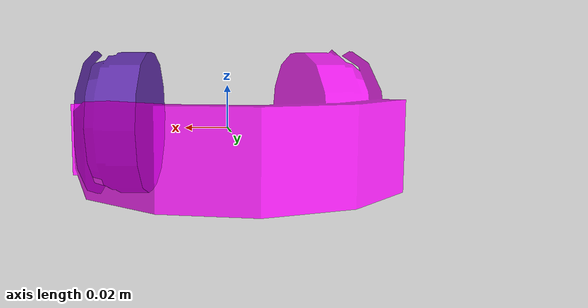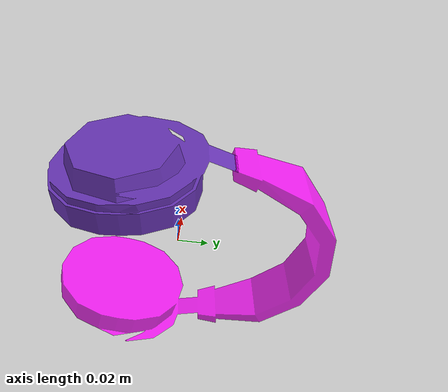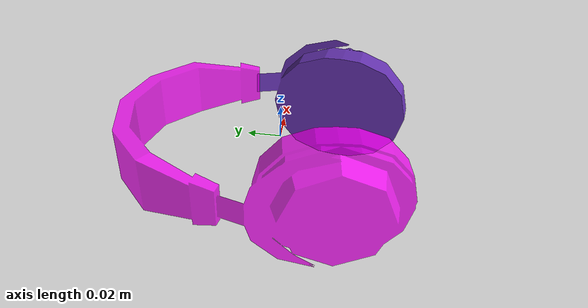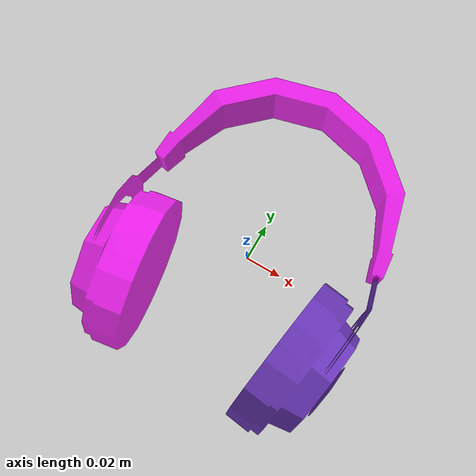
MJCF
<?xml version="1.0" encoding="utf-8"?>
<mujoco model="top_watertight_tiny">

  <asset>

    <mesh file="top_watertight_tiny.obj"/>

    <mesh file="top_watertight_tiny_collision_0.obj"/>

    <mesh file="top_watertight_tiny_collision_1.obj"/>

    <mesh file="top_watertight_tiny_collision_2.obj"/>

    <mesh file="top_watertight_tiny_collision_3.obj"/>

    <mesh file="top_watertight_tiny_collision_4.obj"/>

    <mesh file="top_watertight_tiny_collision_5.obj"/>

    <mesh file="top_watertight_tiny_collision_6.obj"/>

    <mesh file="top_watertight_tiny_collision_7.obj"/>

    <mesh file="top_watertight_tiny_collision_8.obj"/>

    <mesh file="top_watertight_tiny_collision_9.obj"/>

    <mesh file="top_watertight_tiny_collision_10.obj"/>

    <mesh file="top_watertight_tiny_collision_11.obj"/>

    <mesh file="top_watertight_tiny_collision_12.obj"/>

    <mesh file="top_watertight_tiny_collision_13.obj"/>

    <mesh file="top_watertight_tiny_collision_14.obj"/>

    <mesh file="top_watertight_tiny_collision_15.obj"/>

    <mesh file="top_watertight_tiny_collision_16.obj"/>

    <mesh file="top_watertight_tiny_collision_17.obj"/>

    <mesh file="top_watertight_tiny_collision_18.obj"/>

    <mesh file="top_watertight_tiny_collision_19.obj"/>

    <mesh file="top_watertight_tiny_collision_20.obj"/>

    <mesh file="top_watertight_tiny_collision_21.obj"/>

    <mesh file="top_watertight_tiny_collision_22.obj"/>

    <mesh file="bottom_watertight_tiny.obj"/>

    <mesh file="bottom_watertight_tiny_collision_0.obj"/>

    <mesh file="bottom_watertight_tiny_collision_1.obj"/>

    <mesh file="bottom_watertight_tiny_collision_2.obj"/>

    <mesh file="bottom_watertight_tiny_collision_3.obj"/>

    <mesh file="bottom_watertight_tiny_collision_4.obj"/>

    <mesh file="bottom_watertight_tiny_collision_5.obj"/>

    <mesh file="bottom_watertight_tiny_collision_6.obj"/>

    <mesh file="bottom_watertight_tiny_collision_7.obj"/>

    <mesh file="bottom_watertight_tiny_collision_8.obj"/>

    <mesh file="bottom_watertight_tiny_collision_9.obj"/>

    <mesh file="bottom_watertight_tiny_collision_10.obj"/>

  </asset>

  <worldbody>

    <body name="top_watertight_tiny">

      <freejoint/>

      <geom mesh="top_watertight_tiny" group="2" type="mesh" rgba="0.4 0.2 0.7 1" contype="0" conaffinity="0" solimp="0.90 0.95 0.001" solref="0.02 1.0" density="100" friction="0.95 0.4 0.3"/>

      <geom mesh="top_watertight_tiny_collision_0" rgba="0.972191975508718 0.7063325295295756 0.017618356531841628 1" group="3" type="mesh" solimp="0.90 0.95 0.001" solref="0.02 1.0" density="100" friction="0.95 0.4 0.3"/>

      <geom mesh="top_watertight_tiny_collision_1" rgba="0.9105662967236675 0.23072450923037469 0.8241091775482193 1" group="3" type="mesh" solimp="0.90 0.95 0.001" solref="0.02 1.0" density="100" friction="0.95 0.4 0.3"/>

      <geom mesh="top_watertight_tiny_collision_2" rgba="0.06595602035843995 0.9905594900314446 0.052005618223440186 1" group="3" type="mesh" solimp="0.90 0.95 0.001" solref="0.02 1.0" density="100" friction="0.95 0.4 0.3"/>

      <geom mesh="top_watertight_tiny_collision_3" rgba="0.5875122225837994 0.38600920195669075 0.2567319312206978 1" group="3" type="mesh" solimp="0.90 0.95 0.001" solref="0.02 1.0" density="100" friction="0.95 0.4 0.3"/>

      <geom mesh="top_watertight_tiny_collision_4" rgba="0.8843967061785761 0.7651621590146752 0.4973384128017905 1" group="3" type="mesh" solimp="0.90 0.95 0.001" solref="0.02 1.0" density="100" friction="0.95 0.4 0.3"/>

      <geom mesh="top_watertight_tiny_collision_5" rgba="0.13868441616667926 0.6188789882046587 0.5358339721038192 1" group="3" type="mesh" solimp="0.90 0.95 0.001" solref="0.02 1.0" density="100" friction="0.95 0.4 0.3"/>

      <geom mesh="top_watertight_tiny_collision_6" rgba="0.9644292455005546 0.7867783163744734 0.5996516275383842 1" group="3" type="mesh" solimp="0.90 0.95 0.001" solref="0.02 1.0" density="100" friction="0.95 0.4 0.3"/>

      <geom mesh="top_watertight_tiny_collision_7" rgba="0.8955300513164135 0.6349430476894633 0.3906576238347147 1" group="3" type="mesh" solimp="0.90 0.95 0.001" solref="0.02 1.0" density="100" friction="0.95 0.4 0.3"/>

      <geom mesh="top_watertight_tiny_collision_8" rgba="0.00807233998893453 0.3689432071129899 0.026293767860044226 1" group="3" type="mesh" solimp="0.90 0.95 0.001" solref="0.02 1.0" density="100" friction="0.95 0.4 0.3"/>

      <geom mesh="top_watertight_tiny_collision_9" rgba="0.6533259123739588 0.01856904010015037 0.20779111779516024 1" group="3" type="mesh" solimp="0.90 0.95 0.001" solref="0.02 1.0" density="100" friction="0.95 0.4 0.3"/>

      <geom mesh="top_watertight_tiny_collision_10" rgba="0.5732629979582301 0.4990040027001653 0.910729971205775 1" group="3" type="mesh" solimp="0.90 0.95 0.001" solref="0.02 1.0" density="100" friction="0.95 0.4 0.3"/>

      <geom mesh="top_watertight_tiny_collision_11" rgba="0.25565611417188217 0.4974727984916151 0.033170826806754095 1" group="3" type="mesh" solimp="0.90 0.95 0.001" solref="0.02 1.0" density="100" friction="0.95 0.4 0.3"/>

      <geom mesh="top_watertight_tiny_collision_12" rgba="0.46114622165367924 0.3640672620533516 0.4337314557063341 1" group="3" type="mesh" solimp="0.90 0.95 0.001" solref="0.02 1.0" density="100" friction="0.95 0.4 0.3"/>

      <geom mesh="top_watertight_tiny_collision_13" rgba="0.5819924166070434 0.5929551825824984 0.7419561750883131 1" group="3" type="mesh" solimp="0.90 0.95 0.001" solref="0.02 1.0" density="100" friction="0.95 0.4 0.3"/>

      <geom mesh="top_watertight_tiny_collision_14" rgba="0.20069115523895797 0.7913871705082057 0.14132332947278659 1" group="3" type="mesh" solimp="0.90 0.95 0.001" solref="0.02 1.0" density="100" friction="0.95 0.4 0.3"/>

      <geom mesh="top_watertight_tiny_collision_15" rgba="0.544302303260373 0.1154283687669484 0.5645763346266488 1" group="3" type="mesh" solimp="0.90 0.95 0.001" solref="0.02 1.0" density="100" friction="0.95 0.4 0.3"/>

      <geom mesh="top_watertight_tiny_collision_16" rgba="0.5676102929579001 0.05288669129875101 0.8422864857368847 1" group="3" type="mesh" solimp="0.90 0.95 0.001" solref="0.02 1.0" density="100" friction="0.95 0.4 0.3"/>

      <geom mesh="top_watertight_tiny_collision_17" rgba="0.43154742718216477 0.17179999184107164 0.9593480597990771 1" group="3" type="mesh" solimp="0.90 0.95 0.001" solref="0.02 1.0" density="100" friction="0.95 0.4 0.3"/>

      <geom mesh="top_watertight_tiny_collision_18" rgba="0.04364970963152792 0.5433476429261603 0.951805943184898 1" group="3" type="mesh" solimp="0.90 0.95 0.001" solref="0.02 1.0" density="100" friction="0.95 0.4 0.3"/>

      <geom mesh="top_watertight_tiny_collision_19" rgba="0.16311107996771068 0.041671159854726136 0.8791564929876972 1" group="3" type="mesh" solimp="0.90 0.95 0.001" solref="0.02 1.0" density="100" friction="0.95 0.4 0.3"/>

      <geom mesh="top_watertight_tiny_collision_20" rgba="0.43526710194318563 0.01480659437398757 0.21180047687145376 1" group="3" type="mesh" solimp="0.90 0.95 0.001" solref="0.02 1.0" density="100" friction="0.95 0.4 0.3"/>

      <geom mesh="top_watertight_tiny_collision_21" rgba="0.7173398690918577 0.5931217638811728 0.20469906262751436 1" group="3" type="mesh" solimp="0.90 0.95 0.001" solref="0.02 1.0" density="100" friction="0.95 0.4 0.3"/>

      <geom mesh="top_watertight_tiny_collision_22" rgba="0.9932939068341023 0.778651105566973 0.3959232583777482 1" group="3" type="mesh" solimp="0.90 0.95 0.001" solref="0.02 1.0" density="100" friction="0.95 0.4 0.3"/>

      <body name="bottom_watertight_tiny">

        <geom mesh="bottom_watertight_tiny" group="2" type="mesh" rgba="1 0 1 0.8" contype="0" conaffinity="0" solimp="0.90 0.95 0.001" solref="0.02 1.0" density="100" friction="0.95 0.4 0.3"/>

        <geom mesh="bottom_watertight_tiny_collision_0" rgba="0.7702886763543769 0.17026460255572395 0.5967077943512583 1" group="3" type="mesh" solimp="0.90 0.95 0.001" solref="0.02 1.0" density="100" friction="0.95 0.4 0.3"/>

        <geom mesh="bottom_watertight_tiny_collision_1" rgba="0.21713630587438382 0.49183420138339884 0.844991040781907 1" group="3" type="mesh" solimp="0.90 0.95 0.001" solref="0.02 1.0" density="100" friction="0.95 0.4 0.3"/>

        <geom mesh="bottom_watertight_tiny_collision_2" rgba="0.7478847466445286 0.452731929948476 0.07769997329807055 1" group="3" type="mesh" solimp="0.90 0.95 0.001" solref="0.02 1.0" density="100" friction="0.95 0.4 0.3"/>

        <geom mesh="bottom_watertight_tiny_collision_3" rgba="0.4716981267502265 0.5138116425199856 0.47462361396637565 1" group="3" type="mesh" solimp="0.90 0.95 0.001" solref="0.02 1.0" density="100" friction="0.95 0.4 0.3"/>

        <geom mesh="bottom_watertight_tiny_collision_4" rgba="0.32717606193078586 0.8069211458108948 0.24882245842840478 1" group="3" type="mesh" solimp="0.90 0.95 0.001" solref="0.02 1.0" density="100" friction="0.95 0.4 0.3"/>

        <geom mesh="bottom_watertight_tiny_collision_5" rgba="0.27802803110994767 0.10606422481325495 0.9912991128622208 1" group="3" type="mesh" solimp="0.90 0.95 0.001" solref="0.02 1.0" density="100" friction="0.95 0.4 0.3"/>

        <geom mesh="bottom_watertight_tiny_collision_6" rgba="0.9480548779670334 0.7536054766045438 0.7479745516209404 1" group="3" type="mesh" solimp="0.90 0.95 0.001" solref="0.02 1.0" density="100" friction="0.95 0.4 0.3"/>

        <geom mesh="bottom_watertight_tiny_collision_7" rgba="0.9477393544196723 0.8711548000757964 0.004717158057369164 1" group="3" type="mesh" solimp="0.90 0.95 0.001" solref="0.02 1.0" density="100" friction="0.95 0.4 0.3"/>

        <geom mesh="bottom_watertight_tiny_collision_8" rgba="0.8946360368792812 0.36468031010369373 0.506211236012623 1" group="3" type="mesh" solimp="0.90 0.95 0.001" solref="0.02 1.0" density="100" friction="0.95 0.4 0.3"/>

        <geom mesh="bottom_watertight_tiny_collision_9" rgba="0.8538785590635328 0.9554241194825084 0.8827730627485352 1" group="3" type="mesh" solimp="0.90 0.95 0.001" solref="0.02 1.0" density="100" friction="0.95 0.4 0.3"/>

        <geom mesh="bottom_watertight_tiny_collision_10" rgba="0.8417175814504976 0.6508535175583888 0.23457127322349158 1" group="3" type="mesh" solimp="0.90 0.95 0.001" solref="0.02 1.0" density="100" friction="0.95 0.4 0.3"/>

        <site name="bottom_watertight_tiny_touch_site" pos="0 0 0" size="0.2" rgba="1 0 0 0." type="sphere"/>
      </body>

      <site name="top_watertight_tiny_touch_site" pos="0 0 0" size="0.2" rgba="1 0 0 0." type="sphere"/>
    </body>

  </worldbody>

  <sensor>
    <touch name="top_watertight_tiny_touch" site="top_watertight_tiny_touch_site"/>
    <touch name="bottom_watertight_tiny_touch" site="bottom_watertight_tiny_touch_site"/>
  </sensor>
</mujoco>
